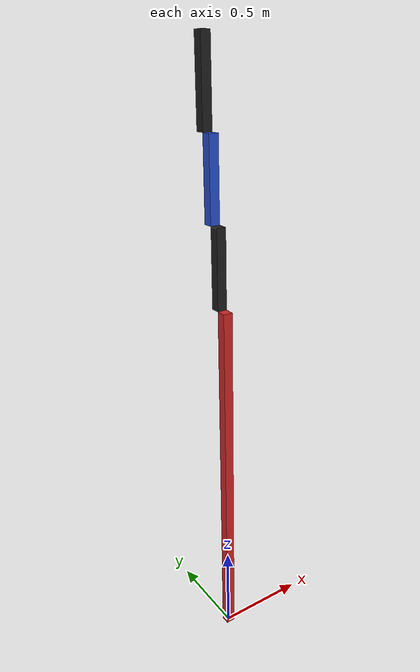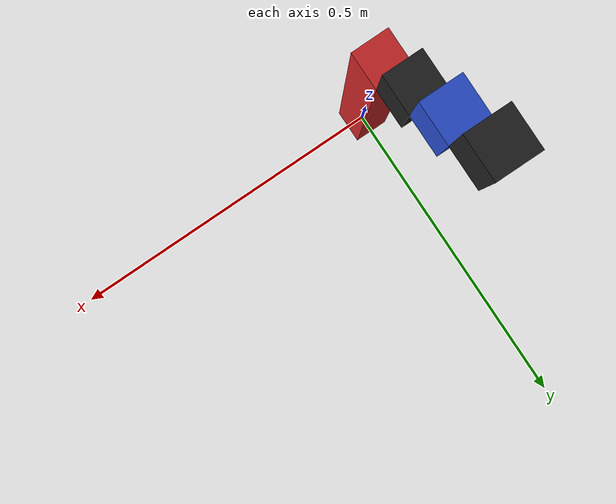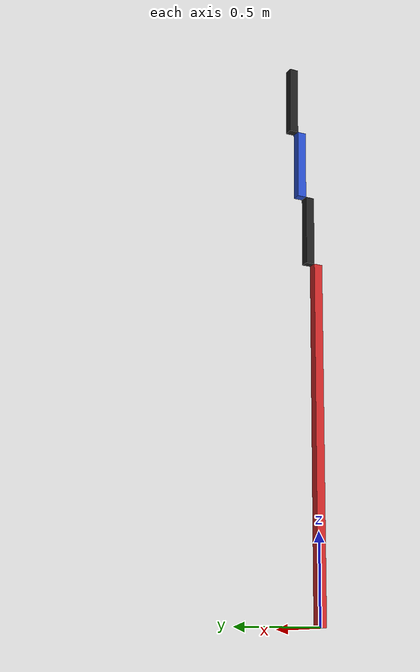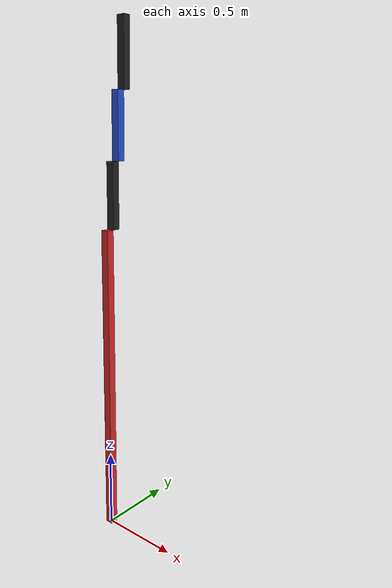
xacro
<?xml version="1.0"?>
<!-- Revolute-Revolute Manipulator -->
<robot name="arm" xmlns:xacro="http://www.ros.org/wiki/xacro">

  <!-- Constants for robot dimensions -->
  <xacro:property name="PI" value="3.1415926535897931"/>
  <xacro:property name="mass" value="0.2" /> <!-- arbitrary value for mass -->
  <xacro:property name="width" value="0.05" /> <!-- Square dimensions (widthxwidth) of beams -->
  <xacro:property name="height1" value="2" /> <!-- Link 1 -->
  <xacro:property name="height2" value="0.4" /> <!-- Link 2 -->
  <xacro:property name="height3" value="0.4" /> <!-- Link 3 -->
  <xacro:property name="height4" value="0.4" /> <!-- Link 4 -->
  <xacro:property name="axel_offset" value="0" /> <!-- Space btw top of beam and the each joint -->

  <!-- Import all Gazebo-customization elements, including Gazebo colors -->
  <xacro:include filename="$(find spider_leg_description)/urdf/arm.gazebo" />
  <!-- Import Rviz colors -->
  <xacro:include filename="$(find spider_leg_description)/urdf/materials.xacro" />

  <!-- Used for fixing robot to Gazebo 'base_link' -->
  <link name="world"/>

  <joint name="fixed" type="fixed">
    <parent link="world"/>
    <child link="link1"/>
  </joint>

  <!-- Base Link -->
  <link name="link1">
    <collision>
      <origin xyz="0 0 ${height1/2}" rpy="0 0 0"/>
      <geometry>
	<box size="${width} ${width} ${height1}"/>
      </geometry>
    </collision>

    <visual>
      <origin xyz="0 0 ${height1/2}" rpy="0 0 0"/>
      <geometry>
	<box size="${width} ${width} ${height1}"/>
      </geometry>
      <material name="red"/>
    </visual>

    <inertial>
      <origin xyz="0 0 ${height1/2}" rpy="0 0 0"/>
      <mass value="${mass}"/>
      <inertia
	  ixx="${mass / 12.0 * (width*width + height1*height1)}" ixy="0.0" ixz="0.0"
	  iyy="${mass / 12.0 * (height1*height1 + width*width)}" iyz="0.0"
	  izz="${mass / 12.0 * (width*width + width*width)}"/>
    </inertial>
  </link>

  <joint name="joint1" type="continuous">
    <parent link="link1"/>
    <child link="link2"/>
    <origin xyz="0 ${width} ${height1 - axel_offset}" rpy="0 0 0"/>
    <axis xyz="0 1 0"/>
    <dynamics damping="0.7"/>
  </joint>

  <!-- Middle Link -->
  <link name="link2">
    <collision>
      <origin xyz="0 0 ${height2/2 - axel_offset}" rpy="0 0 0"/>
      <geometry>
	<box size="${width} ${width} ${height2}"/>
      </geometry>
    </collision>

    <visual>
      <origin xyz="0 0 ${height2/2 - axel_offset}" rpy="0 0 0"/>
      <geometry>
	<box size="${width} ${width} ${height2}"/>
      </geometry>
      <material name="black"/>
    </visual>

    <inertial>
      <origin xyz="0 0 ${height2/2 - axel_offset}" rpy="0 0 0"/>
      <mass value="${mass}"/>
      <inertia
	  ixx="${mass / 12.0 * (width*width + height2*height2)}" ixy="0.0" ixz="0.0"
	  iyy="${mass / 12.0 * (height2*height2 + width*width)}" iyz="0.0"
	  izz="${mass / 12.0 * (width*width + width*width)}"/>
    </inertial>
  </link>

  <joint name="joint2" type="continuous">
    <parent link="link2"/>
    <child link="link3"/>
    <origin xyz="0 ${width} ${height2 - axel_offset*2}" rpy="0 0 0"/>
    <axis xyz="0 1 0"/>
    <dynamics damping="0.7"/>
  </joint>

  <!-- Top Link -->
  <link name="link3">
    <collision>
      <origin xyz="0 0 ${height3/2 - axel_offset}" rpy="0 0 0"/>
      <geometry>
	<box size="${width} ${width} ${height3}"/>
      </geometry>
    </collision>

    <visual>
      <origin xyz="0 0 ${height3/2 - axel_offset}" rpy="0 0 0"/>
      <geometry>
	<box size="${width} ${width} ${height3}"/>
      </geometry>
      <material name="blue"/>
    </visual>

    <inertial>
      <origin xyz="0 0 ${height3/2 - axel_offset}" rpy="0 0 0"/>
      <mass value="${mass}"/>
      <inertia
	  ixx="${mass / 12.0 * (width*width + height3*height3)}" ixy="0.0" ixz="0.0"
	  iyy="${mass / 12.0 * (height3*height3 + width*width)}" iyz="0.0"
	  izz="${mass / 12.0 * (width*width + width*width)}"/>
    </inertial>
  </link>

  <joint name="joint3" type="continuous">
    <axis xyz="0 1 0" />
    <origin xyz="0 0 ${height3 - axel_offset*3}" rpy="0 0 0"/>
    <parent link="link3"/>
    <child link="link4"/>
    <dynamics damping="0.7"/>
  </joint>

  <!-- Topper Link -->
  <link name="link4">
    <collision>
      <origin xyz="0 ${width} ${height4/2 - axel_offset}" rpy="0 0 0"/>
      <geometry>
	<box size="${width} ${width} ${height4}"/>
      </geometry>
    </collision>

    <visual>
      <origin xyz="0 ${width} ${height4/2 - axel_offset}" rpy="0 0 0"/>
      <geometry>
	<box size="${width} ${width} ${height4}"/>
      </geometry>
      <material name="black"/>
    </visual>

    <inertial>
      <origin xyz="0 ${width} ${height4/2 - axel_offset}" rpy="0 0 0"/>
      <mass value="${mass}"/>
      <inertia
	  ixx="${mass / 12.0 * (width*width + height4*height4)}" ixy="0.0" ixz="0.0"
	  iyy="${mass / 12.0 * (height4*height4 + width*width)}" iyz="0.0"
	  izz="${mass / 12.0 * (width*width + width*width)}"/>
    </inertial>
  </link>

  <transmission name="tran1">
    <type>transmission_interface/SimpleTransmission</type>
    <joint name="joint1">
      <hardwareInterface>hardware_interface/EffortJointInterface</hardwareInterface>
    </joint>
    <actuator name="motor1">
      <hardwareInterface>hardware_interface/EffortJointInterface</hardwareInterface>
      <mechanicalReduction>1</mechanicalReduction>
    </actuator>
  </transmission>

  <transmission name="tran2">
    <type>transmission_interface/SimpleTransmission</type>
    <joint name="joint2">
      <hardwareInterface>hardware_interface/EffortJointInterface</hardwareInterface>
    </joint>
    <actuator name="motor2">
      <hardwareInterface>hardware_interface/EffortJointInterface</hardwareInterface>
      <mechanicalReduction>1</mechanicalReduction>
    </actuator>
  </transmission>

  <transmission name="tran3">
    <type>transmission_interface/SimpleTransmission</type>
    <joint name="joint3">
      <hardwareInterface>hardware_interface/EffortJointInterface</hardwareInterface>
    </joint>
    <actuator name="motor3">
      <hardwareInterface>hardware_interface/EffortJointInterface</hardwareInterface>
      <mechanicalReduction>1</mechanicalReduction>
    </actuator>
  </transmission>

</robot>
